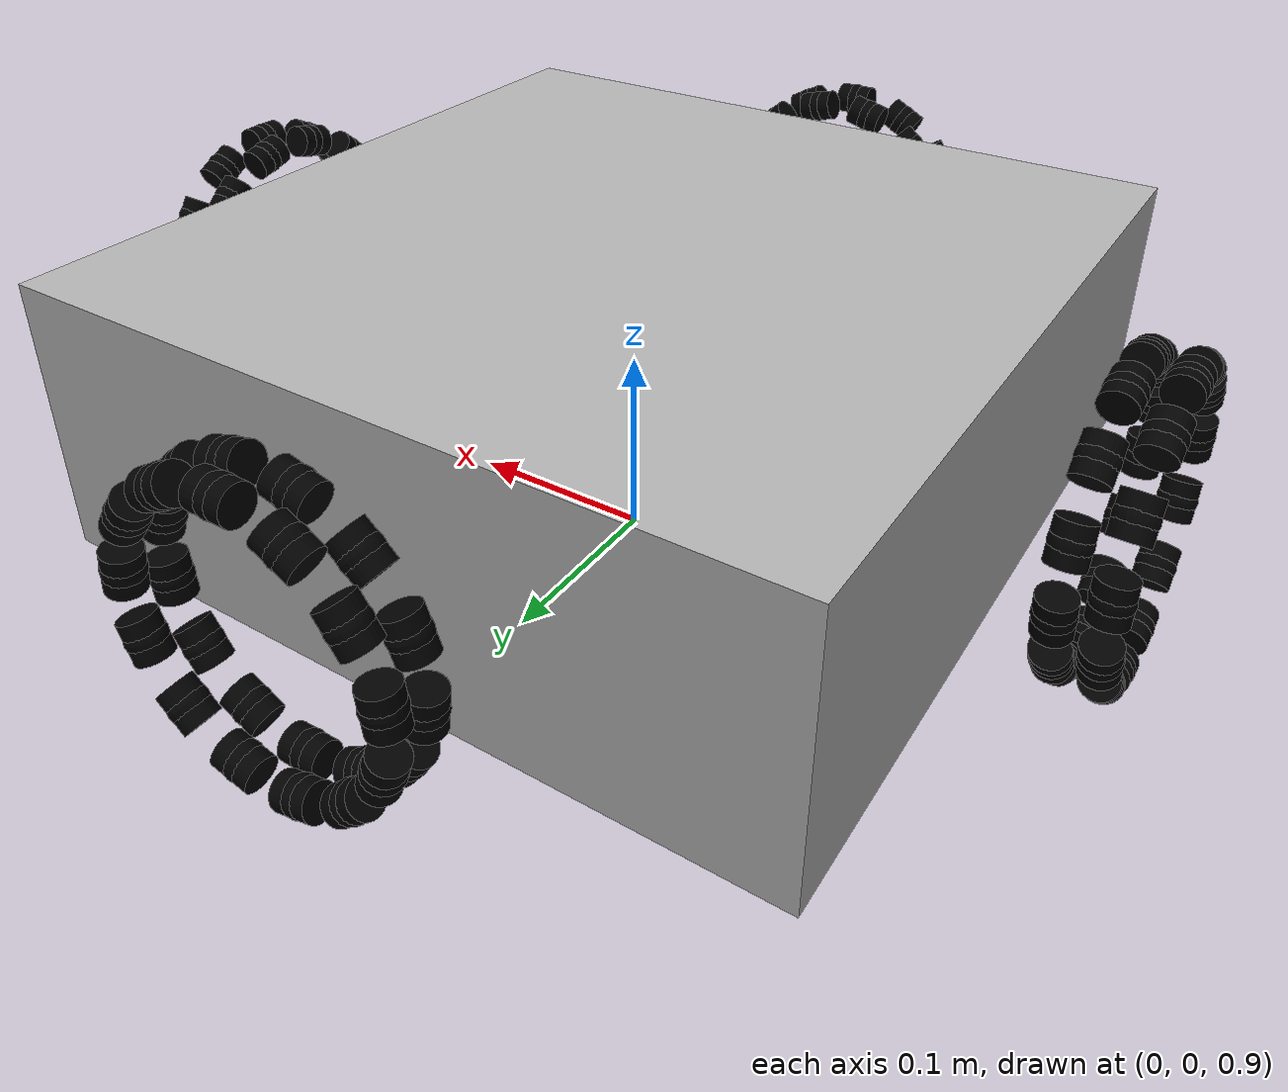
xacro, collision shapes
<?xml version="1.0"?>
<robot name="standard" xmlns:xacro="http://www.ros.org/wiki/xacro">

    <xacro:arg name="is_simulation" default="true" />

    <!-- raise the robot a bit higher to prevent it from stucking in the ground -->
    <joint name="joint_base_to_footprint" type="fixed">
        <origin rpy="0 0 0" xyz="0 0 1" />
        <parent link="l0" />
        <child link="base_link" />
    </joint>
    <!-- dummy joints&links to suppress not found in URDF error-->
    <link name="l0"/>
    <link name="l1"/>
    <link name="l2"/>
    <link name="l3"/>
    <link name="l4"/>
    <link name="l5"/>
    <!-- Fixed joints do not make sense in ros2_control-->
    <joint name="loader_shooter_joint" type="continuous">
        <parent link="l0" />
        <child link="l1" />
    </joint>
    <joint name="yaw_gimbal_joint" type="continuous">
        <parent link="l0" />
        <child link="l2" />
    </joint>
    <joint name="pitch_gimbal_joint" type="continuous">
        <parent link="l0" />
        <child link="l3" />
    </joint>
    <joint name="fric1_shooter_joint" type="continuous">
        <parent link="l0" />
        <child link="l4" />
    </joint>
    <joint name="fric2_shooter_joint" type="continuous">
        <parent link="l0" />
        <child link="l5" />
    </joint>

    <xacro:include filename="$(find metav_description)/urdf/standard/standard.chassis.xacro" />
    <xacro:if value="$(arg is_simulation)">
        <xacro:chassis roller_type="simple" />
    </xacro:if>
    <xacro:unless value="$(arg is_simulation)">
        <xacro:chassis roller_type="none" />
    </xacro:unless>

    <xacro:include filename="$(find metav_description)/urdf/standard/standard.gimbal.xacro" />

    <xacro:include filename="$(find metav_description)/urdf/standard/standard.shooter.xacro" />

    <xacro:unless value="$(arg is_simulation)">
        <ros2_control name="dji_motors_chassis" type="system">
            <hardware>
                <plugin>meta_hardware/MetaRobotDjiMotorNetwork</plugin>
                <param name="can_network_name">can_1</param>
            </hardware>
            <xacro:wheel_transmission prefix="front_left" mechanical_reduction="20.0" motor_id="2" />
            <xacro:wheel_transmission prefix="front_right" mechanical_reduction="20.0" motor_id="1" />
            <xacro:wheel_transmission prefix="back_left" mechanical_reduction="20.0" motor_id="3" />
            <xacro:wheel_transmission prefix="back_right" mechanical_reduction="20.0" motor_id="4" />
            <xacro:shooter_transmission prefix="loader" mechanical_reduction="36.0" offset="0.0" motor_model="M3508"
                motor_id="5" />
        </ros2_control>

        <ros2_control name="dm_motors_yaw" type="system">
            <hardware>
                <plugin>meta_hardware/MetaRobotDmMotorNetwork</plugin>
                <param name="can_network_name">can_1</param>
                <param name="master_id">48</param>
            </hardware>
            <joint name="yaw_gimbal_joint">
                <command_interface name="position"/>
                <command_interface name="velocity"/>
                <command_interface name="effort"/>
                <state_interface name="position" />
                <state_interface name="velocity" />
                <state_interface name="effort" />
                <param name="motor_model">DaMiao</param>
                <param name="motor_id">9</param>
                <param name="mechanical_reduction">1.0</param>
                <param name="max_pos">12.5</param>
                <param name="max_vel">45.0</param>
                <param name="max_effort">12.0</param>
                <param name="offset">0.0</param>
                <param name="control_mode">mit</param>
                <param name="Kp">0.0</param>
                <param name="Kd">0.5</param> <!-- bigger, better velocity track speed-->
            </joint>
        </ros2_control>
        <ros2_control name="mi_motors_pitch" type="system">
            <hardware>
                <plugin>meta_hardware/MetaRobotMiMotorNetwork</plugin>
                <param name="can_network_name">can_2</param>
            </hardware>
            <joint name="pitch_gimbal_joint">
                <command_interface name="position" />
                <state_interface name="position" />
                <state_interface name="velocity" />
                <state_interface name="effort" />
                <param name="motor_model">CyberGear</param>
                <param name="motor_id">1</param>
                <param name="mechanical_reduction">1.0</param>
                <param name="offset">0.7599</param> <!-- read from (int("7842",16)-65535/2)/(65535/2)*4*pi = -0.75990, remember to negate -->
                <param name="control_mode">dynamic</param>
                <param name="Kp">5.0</param>
                <param name="Kd">1.0</param>
            </joint>
        </ros2_control>

        <ros2_control name="dji_motors_gimbal" type="system">
            <hardware>
                <plugin>meta_hardware/MetaRobotDjiMotorNetwork</plugin>
                <param name="can_network_name">can_2</param>
            </hardware>
            <xacro:shooter_transmission prefix="fric1" mechanical_reduction="-1.0" offset="0.25" motor_model="M3508"
                motor_id="4" />
            <xacro:shooter_transmission prefix="fric2" mechanical_reduction="1.0" offset="0.0" motor_model="M3508"
                motor_id="3" />
        </ros2_control>
        <ros2_control name="dm_imu" type="sensor">
            <hardware>
                <plugin>meta_hardware/DMIMUInterface</plugin>
                <param name="tty_devpath">/dev/tty_IMU</param>
                <param name="sensor_name">dm_imu</param>
            </hardware>
        </ros2_control>

    </xacro:unless>

    <xacro:unless value="$(arg is_simulation)">

    </xacro:unless>

    <xacro:if value="$(arg is_simulation)">
        <ros2_control name="dji_motors_chassis" type="system">
            <hardware>
                <plugin>ign_ros2_control/IgnitionSystem</plugin>
            </hardware>
            <xacro:wheel_transmission prefix="front_left" mechanical_reduction="20.0"
                motor_id="2" />
            <xacro:wheel_transmission prefix="front_right" mechanical_reduction="20.0"
                motor_id="1" />
            <xacro:wheel_transmission prefix="back_left" mechanical_reduction="20.0"
                motor_id="3" />
            <xacro:wheel_transmission prefix="back_right" mechanical_reduction="20.0"
                motor_id="4" />
            <xacro:gimbal_transmission prefix="yaw" mechanical_reduction="1.0"
                motor_id="6" offset="0" />
        </ros2_control>

        <ros2_control name="dji_motors_gimbal" type="system">
            <hardware>
                <plugin>meta_hardware/MetaRobotDjiMotorNetwork</plugin>
                <param name="can_network_name">ign_ros2_control/IgnitionSystem</param>
            </hardware>
            <xacro:gimbal_transmission prefix="pitch" mechanical_reduction="20.0" motor_id="2" offse="0" />
        </ros2_control>
    </xacro:if>

    <xacro:if value="$(arg is_simulation)">
        <xacro:include filename="$(find metav_description)/urdf/standard/standard.gazebo.xacro" />
    </xacro:if>
</robot>

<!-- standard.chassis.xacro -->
<robot name="standard_omni" xmlns:xacro="http://www.ros.org/wiki/xacro">
    <xacro:include filename="$(find metav_description)/urdf/common/omni_wheel.xacro"/>

    <xacro:property name="chassis_radius" value="0.245"/>
    <xacro:property name="wheel_offset_z" value="0.0"/>

    <xacro:macro name="chassis" params="roller_type">

        <link name="base_link">
            <inertial>
                <mass value="12.326"/>
                <origin xyz="-0.000932  -0.000668  -0.01"/>
                <inertia ixx="1.924e-1" ixy="-6.458e-4" ixz="5.951352e-3" iyy="2.473e-1"
                         iyz="-7.22e-4" izz="3.187e-1"/>
            </inertial>
            <visual>
                <origin xyz="0 0 0" rpy="0 0 0"/>
                <geometry>
                    <mesh filename="file://$(find metav_description)/meshes/sentry/chassis.stl" scale="1.0 1.0 1.0"/>
                </geometry>
                <material name="silver">
                    <color rgba="0.700 0.700 0.700 1.000"/>
                </material>
            </visual>
            <collision>
                <origin xyz="0 0 0" rpy="0 0 0"/>
                <geometry>
                    <box size="0.392 0.392 0.14"/>
                </geometry>
            </collision>
        </link>

        <xacro:omni_wheel prefix="front" connected_to="base_link"
                          wheel_x_offset="${chassis_radius}" wheel_y_offset="0.0"
                          wheel_z_offset="${wheel_offset_z}" rotation_degree="${-pi/2}" roller_type="${roller_type}"
                          max_effort="3.42" max_velocity="73"
        />
        <xacro:omni_wheel prefix="right" connected_to="base_link"
                          wheel_x_offset="0.0" wheel_y_offset="${-chassis_radius}"
                          wheel_z_offset="${wheel_offset_z}" rotation_degree="${pi}" roller_type="${roller_type}"
                          max_effort="3.42" max_velocity="73"
        />
        <xacro:omni_wheel prefix="left" connected_to="base_link"
                          wheel_x_offset="0.0" wheel_y_offset="${chassis_radius}"
                          wheel_z_offset="${wheel_offset_z}" rotation_degree="${0}" roller_type="${roller_type}"
                          max_effort="3.42" max_velocity="73"
        />
        <xacro:omni_wheel prefix="back" connected_to="base_link"
                          wheel_x_offset="${-chassis_radius}" wheel_y_offset="${0}"
                          wheel_z_offset="${wheel_offset_z}" rotation_degree="${pi/2}" roller_type="${roller_type}"
                          max_effort="3.42" max_velocity="73"
        />

    </xacro:macro>

</robot>

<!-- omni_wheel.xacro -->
<robot name="omni_wheel" xmlns:xacro="http://www.ros.org/wiki/xacro">

    <xacro:property name="wheel_radius" value="0.0762" />
    <xacro:property name="roller_radius" value="0.009" />

    <xacro:macro name="roller" params="prefix suffix theta roller_type">
        <xacro:if value="${suffix % 2 == 1}">
            <xacro:property name="joint_y_offset" value="0.009563" />
        </xacro:if>
        <xacro:if value="${suffix % 2 == 0}">
            <xacro:property name="joint_y_offset" value="-0.009563" />
        </xacro:if>

        <!--  link  -->
        <link name="${prefix}_roller_${suffix}">
            <xacro:if value="${roller_type=='simple'}">
                <visual>
                    <origin xyz="0 0 0" rpy="0 0 0" />
                    <geometry>
                        <mesh
                            filename="file://$(find metav_description)/meshes/common/omni_roller.stl"
                            scale="0.001 0.001 0.001" />
                    </geometry>
                    <material name="black">
                        <color rgba="0.000 0.000 0.000 1.000" />
                    </material>
                </visual>
                <collision>
                    <geometry>
                        <sphere radius="${roller_radius}" />
                    </geometry>
                </collision>
                <collision>
                    <origin rpy="0 1.57 0" xyz="0 0 0" />
                    <geometry>
                        <cylinder length="19e-3" radius="8.6e-3" />
                    </geometry>
                </collision>
            </xacro:if>
            <inertial>
                <mass value="0.0058" />
                <inertia ixx="270.867e-9" ixy="1.547e-19" ixz="2.133e-19" iyy="291.412e-9" iyz="0.0"
                    izz="291.412e-9" />
            </inertial>
        </link>

        <joint name="${prefix}_roller_${suffix}_joint" type="continuous">
            <origin
                xyz="${(wheel_radius-roller_radius)*cos(theta-pi/2)} ${joint_y_offset} ${(wheel_radius-roller_radius)*sin(theta-pi/2)}"
                rpy="0 ${-theta} 0" />
            <axis xyz="1 0 0" />
            <dynamics damping="0.0" friction="0.001" />
            <parent link="${prefix}_wheel" />
            <child link="${prefix}_roller_${suffix}" />
        </joint>

        <gazebo reference="${prefix}_roller_${suffix}">
            <mu1 value="2000.0" />
            <mu2 value="2000.0" />
            <kp value="1000000.0" />
            <kd value="100.0" />
        </gazebo>

    </xacro:macro>

    <xacro:macro name="omni_wheel"
        params="prefix connected_to wheel_x_offset wheel_y_offset wheel_z_offset rotation_degree roller_type max_effort max_velocity">
        <!--  link  -->
        <link name="${prefix}_wheel">
            <visual>
                <geometry>
                    <mesh filename="file://$(find metav_description)/meshes/common/omni_wheel.stl"
                        scale="0.001 0.001 0.001" />
                </geometry>
                <material name="gray">
                    <color rgba="0.250 0.250 0.250 1.000" />
                </material>
            </visual>
            <inertial>
                <mass value="0.59" />
                <inertia ixx="1.416e-3" ixy="0.0" ixz="0.0" iyy="2.749e-3" iyz="0.0" izz="1.416e-3" />
            </inertial>
        </link>

        <!--  joint  -->
        <joint name="${prefix}_wheel_joint" type="continuous">
            <axis xyz="0 1 0" />
            <origin xyz="${wheel_x_offset} ${wheel_y_offset} ${wheel_offset_z}"
                rpy="0 0 ${rotation_degree}" />
            <!--      limit not work while type="continuous"-->
            <limit effort="${max_effort}" velocity="${max_velocity}" lower="-1e9" upper="1e9" />
            <dynamics damping="0.0" friction="0.05" />
            <parent link="${connected_to}" />
            <child link="${prefix}_wheel" />
        </joint>

        <xacro:unless value="${roller_type=='none'}">
            <xacro:roller prefix="${prefix}" suffix="0" theta="${0*pi/13}"
                roller_type="${roller_type}" />
            <xacro:roller prefix="${prefix}" suffix="1" theta="${1*pi/13}"
                roller_type="${roller_type}" />
            <xacro:roller prefix="${prefix}" suffix="2" theta="${2*pi/13}"
                roller_type="${roller_type}" />
            <xacro:roller prefix="${prefix}" suffix="3" theta="${3*pi/13}"
                roller_type="${roller_type}" />
            <xacro:roller prefix="${prefix}" suffix="4" theta="${4*pi/13}"
                roller_type="${roller_type}" />
            <xacro:roller prefix="${prefix}" suffix="5" theta="${5*pi/13}"
                roller_type="${roller_type}" />
            <xacro:roller prefix="${prefix}" suffix="6" theta="${6*pi/13}"
                roller_type="${roller_type}" />
            <xacro:roller prefix="${prefix}" suffix="7" theta="${7*pi/13}"
                roller_type="${roller_type}" />
            <xacro:roller prefix="${prefix}" suffix="8" theta="${8*pi/13}"
                roller_type="${roller_type}" />
            <xacro:roller prefix="${prefix}" suffix="9" theta="${9*pi/13}"
                roller_type="${roller_type}" />
            <xacro:roller prefix="${prefix}" suffix="10" theta="${10*pi/13}"
                roller_type="${roller_type}" />
            <xacro:roller prefix="${prefix}" suffix="11" theta="${11*pi/13}"
                roller_type="${roller_type}" />
            <xacro:roller prefix="${prefix}" suffix="12" theta="${12*pi/13}"
                roller_type="${roller_type}" />
            <xacro:roller prefix="${prefix}" suffix="13" theta="${13*pi/13}"
                roller_type="${roller_type}" />
            <xacro:roller prefix="${prefix}" suffix="14" theta="${14*pi/13}"
                roller_type="${roller_type}" />
            <xacro:roller prefix="${prefix}" suffix="15" theta="${15*pi/13}"
                roller_type="${roller_type}" />
            <xacro:roller prefix="${prefix}" suffix="16" theta="${16*pi/13}"
                roller_type="${roller_type}" />
            <xacro:roller prefix="${prefix}" suffix="17" theta="${17*pi/13}"
                roller_type="${roller_type}" />
            <xacro:roller prefix="${prefix}" suffix="18" theta="${18*pi/13}"
                roller_type="${roller_type}" />
            <xacro:roller prefix="${prefix}" suffix="19" theta="${19*pi/13}"
                roller_type="${roller_type}" />
            <xacro:roller prefix="${prefix}" suffix="20" theta="${20*pi/13}"
                roller_type="${roller_type}" />
            <xacro:roller prefix="${prefix}" suffix="21" theta="${21*pi/13}"
                roller_type="${roller_type}" />
            <xacro:roller prefix="${prefix}" suffix="22" theta="${22*pi/13}"
                roller_type="${roller_type}" />
            <xacro:roller prefix="${prefix}" suffix="23" theta="${23*pi/13}"
                roller_type="${roller_type}" />
            <xacro:roller prefix="${prefix}" suffix="24" theta="${24*pi/13}"
                roller_type="${roller_type}" />
            <xacro:roller prefix="${prefix}" suffix="25" theta="${25*pi/13}"
                roller_type="${roller_type}" />
        </xacro:unless>

    </xacro:macro>

    <xacro:macro name="wheel_transmission" params="prefix mechanical_reduction motor_id">
        <joint name="${prefix}_wheel_joint">
            <command_interface name="effort">
            </command_interface>
            <state_interface name="position" />
            <state_interface name="velocity" />
            <state_interface name="effort" />
            <param name="motor_model">M3508</param>
            <param name="motor_id">${motor_id}</param>
            <param name="mechanical_reduction">${mechanical_reduction}</param>
            <param name="offset">0.0</param>
        </joint>
    </xacro:macro>
</robot>
